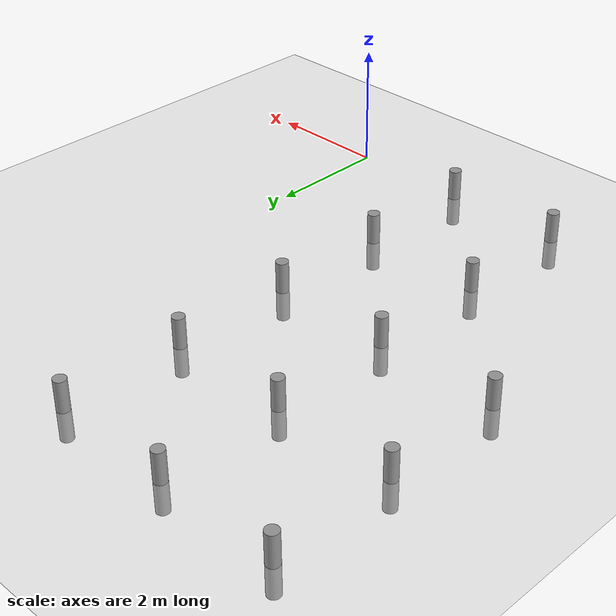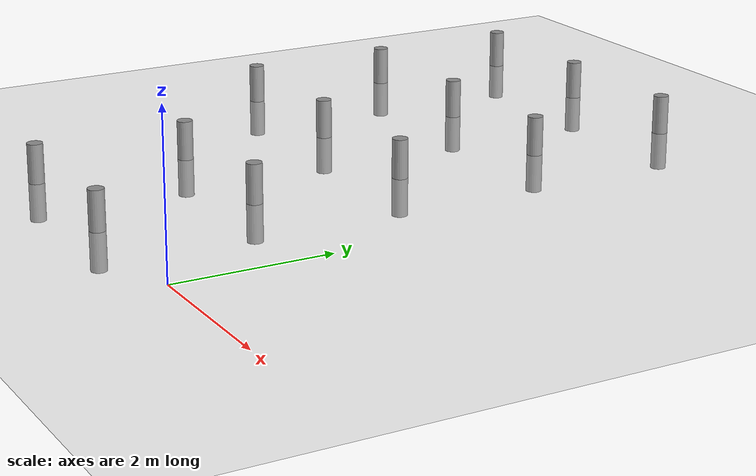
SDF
<sdf version="1.5">
 <world name="default">
  <model name="ground_plane">
   <static>1</static>
   <link name="link">
    <collision name="collision">
     <geometry><plane><normal>0 0 1</normal><size>100 100</size></plane></geometry>
     <surface><friction><ode><mu>100</mu><mu2>50</mu2></ode></friction></surface>
    </collision>
    <visual name="visual">
     <cast_shadows>0</cast_shadows>
     <geometry><plane><normal>0 0 1</normal><size>100 100</size></plane></geometry>
     <material>
      <script><uri>file://media/materials/scripts/gazebo.material</uri><name>Gazebo/Grey</name></script>
     </material>
    </visual>
   </link>
  </model>
  <model name="unit_cylinder_-6_4">
   <pose>-6 4 0 0 -0 1.7e-05</pose>
   <link name="link">
    <inertial>
     <mass>1</mass>
     <inertia><ixx>1</ixx><ixy>0</ixy><ixz>0</ixz><iyy>1</iyy><iyz>0</iyz><izz>1</izz></inertia>
    </inertial>
    <collision name="collision">
     <geometry><cylinder><radius>0.1</radius><length>1</length></cylinder></geometry>
    </collision>
    <visual name="visual">
     <geometry><cylinder><radius>0.1</radius><length>1</length></cylinder></geometry>
     <material>
      <script><uri>file://media/materials/scripts/gazebo.material</uri><name>Gazebo/Grey</name></script>
     </material>
    </visual>
   </link>
  </model>
  <model name="unit_cylinder_-6_6">
   <pose>-6 6 0 0 -0 1.7e-05</pose>
   <link name="link">
    <inertial>
     <mass>1</mass>
     <inertia><ixx>1</ixx><ixy>0</ixy><ixz>0</ixz><iyy>1</iyy><iyz>0</iyz><izz>1</izz></inertia>
    </inertial>
    <collision name="collision">
     <geometry><cylinder><radius>0.1</radius><length>1</length></cylinder></geometry>
    </collision>
    <visual name="visual">
     <geometry><cylinder><radius>0.1</radius><length>1</length></cylinder></geometry>
     <material>
      <script><uri>file://media/materials/scripts/gazebo.material</uri><name>Gazebo/Grey</name></script>
     </material>
    </visual>
   </link>
  </model>
  <model name="unit_cylinder_-6_8">
   <pose>-6 8 0 0 -0 1.7e-05</pose>
   <link name="link">
    <inertial>
     <mass>1</mass>
     <inertia><ixx>1</ixx><ixy>0</ixy><ixz>0</ixz><iyy>1</iyy><iyz>0</iyz><izz>1</izz></inertia>
    </inertial>
    <collision name="collision">
     <geometry><cylinder><radius>0.1</radius><length>1</length></cylinder></geometry>
    </collision>
    <visual name="visual">
     <geometry><cylinder><radius>0.1</radius><length>1</length></cylinder></geometry>
     <material>
      <script><uri>file://media/materials/scripts/gazebo.material</uri><name>Gazebo/Grey</name></script>
     </material>
    </visual>
   </link>
  </model>
  <model name="unit_cylinder_-4_0">
   <pose>-4 0 0 0 -0 1.7e-05</pose>
   <link name="link">
    <inertial>
     <mass>1</mass>
     <inertia><ixx>1</ixx><ixy>0</ixy><ixz>0</ixz><iyy>1</iyy><iyz>0</iyz><izz>1</izz></inertia>
    </inertial>
    <collision name="collision">
     <geometry><cylinder><radius>0.1</radius><length>1</length></cylinder></geometry>
    </collision>
    <visual name="visual">
     <geometry><cylinder><radius>0.1</radius><length>1</length></cylinder></geometry>
     <material>
      <script><uri>file://media/materials/scripts/gazebo.material</uri><name>Gazebo/Grey</name></script>
     </material>
    </visual>
   </link>
  </model>
  <model name="unit_cylinder_-4_2">
   <pose>-4 2 0 0 -0 1.7e-05</pose>
   <link name="link">
    <inertial>
     <mass>1</mass>
     <inertia><ixx>1</ixx><ixy>0</ixy><ixz>0</ixz><iyy>1</iyy><iyz>0</iyz><izz>1</izz></inertia>
    </inertial>
    <collision name="collision">
     <geometry><cylinder><radius>0.1</radius><length>1</length></cylinder></geometry>
    </collision>
    <visual name="visual">
     <geometry><cylinder><radius>0.1</radius><length>1</length></cylinder></geometry>
     <material>
      <script><uri>file://media/materials/scripts/gazebo.material</uri><name>Gazebo/Grey</name></script>
     </material>
    </visual>
   </link>
  </model>
  <model name="unit_cylinder_-4_4">
   <pose>-4 4 0 0 -0 1.7e-05</pose>
   <link name="link">
    <inertial>
     <mass>1</mass>
     <inertia><ixx>1</ixx><ixy>0</ixy><ixz>0</ixz><iyy>1</iyy><iyz>0</iyz><izz>1</izz></inertia>
    </inertial>
    <collision name="collision">
     <geometry><cylinder><radius>0.1</radius><length>1</length></cylinder></geometry>
    </collision>
    <visual name="visual">
     <geometry><cylinder><radius>0.1</radius><length>1</length></cylinder></geometry>
     <material>
      <script><uri>file://media/materials/scripts/gazebo.material</uri><name>Gazebo/Grey</name></script>
     </material>
    </visual>
   </link>
  </model>
  <model name="unit_cylinder_-4_6">
   <pose>-4 6 0 0 -0 1.7e-05</pose>
   <link name="link">
    <inertial>
     <mass>1</mass>
     <inertia><ixx>1</ixx><ixy>0</ixy><ixz>0</ixz><iyy>1</iyy><iyz>0</iyz><izz>1</izz></inertia>
    </inertial>
    <collision name="collision">
     <geometry><cylinder><radius>0.1</radius><length>1</length></cylinder></geometry>
    </collision>
    <visual name="visual">
     <geometry><cylinder><radius>0.1</radius><length>1</length></cylinder></geometry>
     <material>
      <script><uri>file://media/materials/scripts/gazebo.material</uri><name>Gazebo/Grey</name></script>
     </material>
    </visual>
   </link>
  </model>
  <model name="unit_cylinder_-4_8">
   <pose>-4 8 0 0 -0 1.7e-05</pose>
   <link name="link">
    <inertial>
     <mass>1</mass>
     <inertia><ixx>1</ixx><ixy>0</ixy><ixz>0</ixz><iyy>1</iyy><iyz>0</iyz><izz>1</izz></inertia>
    </inertial>
    <collision name="collision">
     <geometry><cylinder><radius>0.1</radius><length>1</length></cylinder></geometry>
    </collision>
    <visual name="visual">
     <geometry><cylinder><radius>0.1</radius><length>1</length></cylinder></geometry>
     <material>
      <script><uri>file://media/materials/scripts/gazebo.material</uri><name>Gazebo/Grey</name></script>
     </material>
    </visual>
   </link>
  </model>
  <model name="unit_cylinder_-2_0">
   <pose>-2 0 0 0 -0 1.7e-05</pose>
   <link name="link">
    <inertial>
     <mass>1</mass>
     <inertia><ixx>1</ixx><ixy>0</ixy><ixz>0</ixz><iyy>1</iyy><iyz>0</iyz><izz>1</izz></inertia>
    </inertial>
    <collision name="collision">
     <geometry><cylinder><radius>0.1</radius><length>1</length></cylinder></geometry>
    </collision>
    <visual name="visual">
     <geometry><cylinder><radius>0.1</radius><length>1</length></cylinder></geometry>
     <material>
      <script><uri>file://media/materials/scripts/gazebo.material</uri><name>Gazebo/Grey</name></script>
     </material>
    </visual>
   </link>
  </model>
  <model name="unit_cylinder_-2_2">
   <pose>-2 2 0 0 -0 1.7e-05</pose>
   <link name="link">
    <inertial>
     <mass>1</mass>
     <inertia><ixx>1</ixx><ixy>0</ixy><ixz>0</ixz><iyy>1</iyy><iyz>0</iyz><izz>1</izz></inertia>
    </inertial>
    <collision name="collision">
     <geometry><cylinder><radius>0.1</radius><length>1</length></cylinder></geometry>
    </collision>
    <visual name="visual">
     <geometry><cylinder><radius>0.1</radius><length>1</length></cylinder></geometry>
     <material>
      <script><uri>file://media/materials/scripts/gazebo.material</uri><name>Gazebo/Grey</name></script>
     </material>
    </visual>
   </link>
  </model>
  <model name="unit_cylinder_-2_4">
   <pose>-2 4 0 0 -0 1.7e-05</pose>
   <link name="link">
    <inertial>
     <mass>1</mass>
     <inertia><ixx>1</ixx><ixy>0</ixy><ixz>0</ixz><iyy>1</iyy><iyz>0</iyz><izz>1</izz></inertia>
    </inertial>
    <collision name="collision">
     <geometry><cylinder><radius>0.1</radius><length>1</length></cylinder></geometry>
    </collision>
    <visual name="visual">
     <geometry><cylinder><radius>0.1</radius><length>1</length></cylinder></geometry>
     <material>
      <script><uri>file://media/materials/scripts/gazebo.material</uri><name>Gazebo/Grey</name></script>
     </material>
    </visual>
   </link>
  </model>
  <model name="unit_cylinder_-2_6">
   <pose>-2 6 0 0 -0 1.7e-05</pose>
   <link name="link">
    <inertial>
     <mass>1</mass>
     <inertia><ixx>1</ixx><ixy>0</ixy><ixz>0</ixz><iyy>1</iyy><iyz>0</iyz><izz>1</izz></inertia>
    </inertial>
    <collision name="collision">
     <geometry><cylinder><radius>0.1</radius><length>1</length></cylinder></geometry>
    </collision>
    <visual name="visual">
     <geometry><cylinder><radius>0.1</radius><length>1</length></cylinder></geometry>
     <material>
      <script><uri>file://media/materials/scripts/gazebo.material</uri><name>Gazebo/Grey</name></script>
     </material>
    </visual>
   </link>
  </model>
  <model name="unit_cylinder_-2_8">
   <pose>-2 8 0 0 -0 1.7e-05</pose>
   <link name="link">
    <inertial>
     <mass>1</mass>
     <inertia><ixx>1</ixx><ixy>0</ixy><ixz>0</ixz><iyy>1</iyy><iyz>0</iyz><izz>1</izz></inertia>
    </inertial>
    <collision name="collision">
     <geometry><cylinder><radius>0.1</radius><length>1</length></cylinder></geometry>
    </collision>
    <visual name="visual">
     <geometry><cylinder><radius>0.1</radius><length>1</length></cylinder></geometry>
     <material>
      <script><uri>file://media/materials/scripts/gazebo.material</uri><name>Gazebo/Grey</name></script>
     </material>
    </visual>
   </link>
  </model>
 </world>
</sdf>
